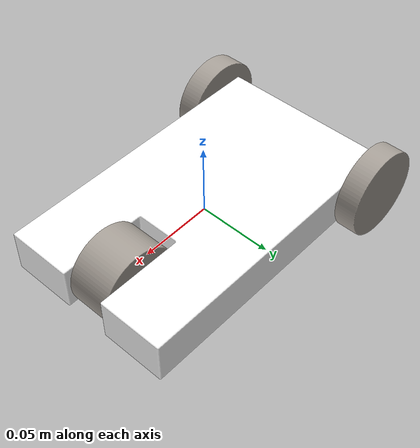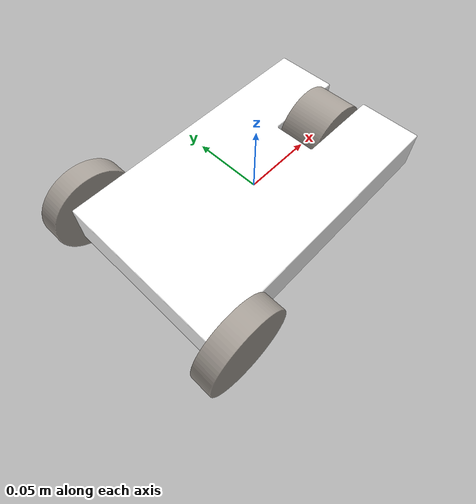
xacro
<?xml version="1.0" encoding="utf-8"?>
<robot name="tri-wheeler">
  <link name="dummy"></link>
  <link  name="base_link">
    <inertial>
      <origin
        xyz="-0.00568396213062751 -5.42112930590219E-20 2.4427701852326E-18"
        rpy="0 0 0" />
      <mass
        value="1.54430829947819" />
      <inertia
        ixx="0.00210885922475386"
        ixy="1.04050876056175E-20"
        ixz="9.55463165122595E-23"
        iyy="0.00685492006957841"
        iyz="1.53740241013503E-20"
        izz="0.00497749146060696" />
    </inertial>
    <visual>
      <origin
        xyz="0 0 0"
        rpy="0 0 0" />
      <geometry>
        <mesh
          filename="package://robots/meshes/tri_wheeler/base_link.STL" />
      </geometry>
      <material
        name="">
        <color
          rgba="1 1 1 1" />
      </material>
    </visual>
    <collision>
      <origin
        xyz="0 0 0"
        rpy="0 0 0" />
      <geometry>
        <mesh
          filename="package://robots/meshes/tri_wheeler/base_link.STL" />
      </geometry>
    </collision>
  </link>
  <joint name="dummy_joint" type="fixed">
	<parent
      link="dummy" />
    <child
      link="base_link" />
  </joint>
  <link  name="rear_wheel_L">
    <inertial>
      <origin
        xyz="0 -3.0786E-50 -0.0075"
        rpy="0 0 0" />
      <mass
        value="0.33489" />
      <inertia
        ixx="8.1589E-05"
        ixy="-9.5649E-53"
        ixz="-8.3645E-22"
        iyy="8.1589E-05"
        iyz="-1.3852E-37"
        izz="0.00015063" />
    </inertial>
    <visual>
      <origin
        xyz="0 0 0"
        rpy="0 0 0" />
      <geometry>
        <mesh
          filename="package://robots/meshes/tri_wheeler/rear_wheel_L.STL" />
      </geometry>
      <material
        name="">
        <color
          rgba="0.64706 0.61961 0.58824 1" />
      </material>
    </visual>
    <collision>
      <origin
        xyz="0 0 0"
        rpy="0 0 0" />
      <geometry>
        <mesh
          filename="package://robots/meshes/tri_wheeler/rear_wheel_L.STL" />
      </geometry>
    </collision>
  </link>
  <joint name="rear_wheel_L_joint" type="continuous">
    <origin
      xyz="-0.085 0.06 0"
      rpy="1.5708 0 0" />
    <parent
      link="base_link" />
    <child
      link="rear_wheel_L" />
    <axis
      xyz="0 0 1" />
    <limit
      effort="30"
      velocity="100" />
  </joint>
  <link  name="rear_wheel_R">
    <inertial>
      <origin
        xyz="2.4286E-17 0 0.0075"
        rpy="0 0 0" />
      <mass
        value="0.33489" />
      <inertia
        ixx="8.1589E-05"
        ixy="5.0822E-21"
        ixz="1.8509E-21"
        iyy="8.1589E-05"
        iyz="2.1655E-22"
        izz="0.00015063" />
    </inertial>
    <visual>
      <origin
        xyz="0 0 0"
        rpy="0 0 0" />
      <geometry>
        <mesh
          filename="package://robots/meshes/tri_wheeler/rear_wheel_R.STL" />
      </geometry>
      <material
        name="">
        <color
          rgba="0.64706 0.61961 0.58824 1" />
      </material>
    </visual>
    <collision>
      <origin
        xyz="0 0 0"
        rpy="0 0 0" />
      <geometry>
        <mesh
          filename="package://robots/meshes/tri_wheeler/rear_wheel_R.STL" />
      </geometry>
    </collision>
  </link>
  <joint name="rear_wheel_R_joint" type="continuous">
    <origin
      xyz="-0.085 -0.06 0"
      rpy="-1.5708 -1.3335 3.1416" />
    <parent
      link="base_link" />
    <child
      link="rear_wheel_R" />
    <axis
      xyz="0 0 1" />
    <limit
      effort="30"
      velocity="100" />
  </joint>
  <link  name="front_wheel">
    <inertial>
      <origin
        xyz="0 0 -8.4803E-18"
        rpy="0 0 0" />
      <mass
        value="0.54264" />
      <inertia
        ixx="0.00013955"
        ixy="0"
        ixz="-1.7081E-37"
        iyy="0.00013955"
        iyz="-4.0164E-37"
        izz="0.00019774" />
    </inertial>
    <visual>
      <origin
        xyz="0 0 0"
        rpy="0 0 0" />
      <geometry>
        <mesh
          filename="package://robots/meshes/tri_wheeler/front_wheel.STL" />
      </geometry>
      <material
        name="">
        <color
          rgba="0.64706 0.61961 0.58824 1" />
      </material>
    </visual>
    <collision>
      <origin
        xyz="0 0 0"
        rpy="0 0 0" />
      <geometry>
        <mesh
          filename="package://robots/meshes/tri_wheeler/front_wheel.STL" />
      </geometry>
    </collision>
  </link>
  <joint name="front_wheel_joint" type="continuous">
    <origin
      xyz="0.07 0 0"
      rpy="1.5708 0 0" />
    <parent
      link="base_link" />
    <child
      link="front_wheel" />
    <axis
      xyz="0 0 -1" />
    <limit
      effort="30"
      velocity="100" />
  </joint>

  <!-- Transmission is important to link the joints and the controller -->
    <transmission name="rear_wheel_L_joint_trans">
      <type>transmission_interface/SimpleTransmission</type>
      <joint name="rear_wheel_L_joint" />
      <actuator name="rear_wheel_L_joint_motor">
        <hardwareInterface>EffortJointInterface</hardwareInterface>
        <mechanicalReduction>1</mechanicalReduction>
      </actuator>
    </transmission>

    <transmission name="rear_wheel_R_joint_trans">
      <type>transmission_interface/SimpleTransmission</type>
      <joint name="rear_wheel_R_joint" />
      <actuator name="rear_wheel_R_joint_motor">
        <hardwareInterface>EffortJointInterface</hardwareInterface>
        <mechanicalReduction>1</mechanicalReduction>
      </actuator>
    </transmission>

  <!-- Differential drive controller  -->
  <gazebo>
    <plugin name="differential_drive_controller" filename="libgazebo_ros_diff_drive.so">
      <legacyMode>true</legacyMode>
      <rosDebugLevel>Debug</rosDebugLevel>
      <publishWheelTF>false</publishWheelTF>
      <robotNamespace>/</robotNamespace>
      <publishTf>1</publishTf>
      <publishWheelJointState>false</publishWheelJointState>
      <alwaysOn>true</alwaysOn>
      <updateRate>100.0</updateRate>
      <leftJoint>rear_wheel_L_joint</leftJoint>
      <rightJoint>rear_wheel_R_joint</rightJoint>
      <wheelSeparation>0.12</wheelSeparation>
      <wheelDiameter>0.06</wheelDiameter>
      <broadcastTF>1</broadcastTF>
      <wheelTorque>30</wheelTorque>
      <wheelAcceleration>0.8</wheelAcceleration>
      <commandTopic>turtlebot_teleop_keyboard/cmd_vel</commandTopic>
      <odometryFrame>odom</odometryFrame>
      <odometryTopic>odom</odometryTopic>
      <robotBaseFrame>dummy</robotBaseFrame>
    </plugin>
  </gazebo>

</robot>
